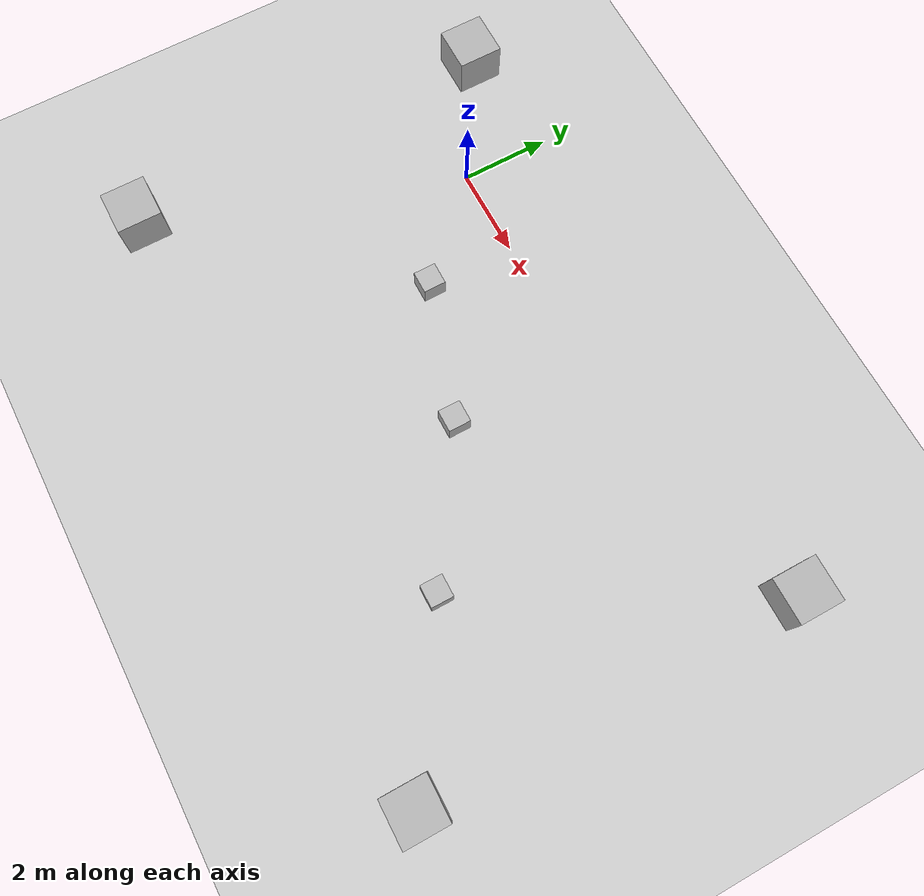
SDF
<sdf version='1.10'>
  <world name='empty'>
    <physics name='1ms' type='ignored'>
      <max_step_size>0.001</max_step_size>
      <real_time_factor>1</real_time_factor>
      <real_time_update_rate>1000</real_time_update_rate>
    </physics>
    <plugin name='gz::sim::systems::Physics' filename='gz-sim-physics-system'/>
    <plugin name='gz::sim::systems::UserCommands' filename='gz-sim-user-commands-system'/>
    <plugin name='gz::sim::systems::SceneBroadcaster' filename='gz-sim-scene-broadcaster-system'/>
    <plugin name='gz::sim::systems::Sensors' filename='gz-sim-sensors-system'>
      <render_engine>ogre2</render_engine>
    </plugin>
    <plugin name='gz::sim::systems::Contact' filename='gz-sim-contact-system'/>
    <gravity>0 0 -9.8000000000000007</gravity>
    <magnetic_field>5.5644999999999998e-06 2.2875799999999999e-05 -4.2388400000000002e-05</magnetic_field>
    <atmosphere type='adiabatic'/>
    <scene>
      <ambient>0.400000006 0.400000006 0.400000006 1</ambient>
      <background>0.699999988 0.699999988 0.699999988 1</background>
      <shadows>true</shadows>
    </scene>
    <model name='ground_plane'>
      <static>true</static>
      <link name='link'>
        <collision name='collision'>
          <geometry>
            <plane>
              <normal>0 0 1</normal>
              <size>100 100</size>
            </plane>
          </geometry>
          <surface>
            <friction>
              <ode>
                <mu>100</mu>
                <mu2>100</mu2>
              </ode>
            </friction>
            <bounce/>
            <contact/>
          </surface>
        </collision>
        <visual name='visual'>
          <geometry>
            <plane>
              <normal>0 0 1</normal>
              <size>100 100</size>
            </plane>
          </geometry>
          <material>
            <ambient>0.800000012 0.800000012 0.800000012 1</ambient>
            <diffuse>0.800000012 0.800000012 0.800000012 1</diffuse>
            <specular>0.800000012 0.800000012 0.800000012 1</specular>
          </material>
        </visual>
        <pose>0 0 0 0 0 0</pose>
        <inertial>
          <pose>0 0 0 0 0 0</pose>
          <mass>1</mass>
          <inertia>
            <ixx>1</ixx>
            <ixy>0</ixy>
            <ixz>0</ixz>
            <iyy>1</iyy>
            <iyz>0</iyz>
            <izz>1</izz>
          </inertia>
        </inertial>
        <enable_wind>false</enable_wind>
      </link>
      <pose>0 0 0 0 0 0</pose>
      <self_collide>false</self_collide>
    </model>
    <model name='box_1_4'>
      <pose>-2.3311622142791748 -6.9827756881713867 0.56375974416732788 1.4772699527518344e-06 -7.2460899505897866e-06 -7.810909560198614e-06</pose>
      <link name='box_link'>
        <inertial>
          <inertia>
            <ixx>0.16666</ixx>
            <ixy>0</ixy>
            <ixz>0</ixz>
            <iyy>0.16666</iyy>
            <iyz>0</iyz>
            <izz>0.16666</izz>
          </inertia>
          <mass>1</mass>
          <pose>0 0 0 0 0 0</pose>
        </inertial>
        <collision name='box_collision'>
          <geometry>
            <box>
              <size>1 1 1</size>
            </box>
          </geometry>
          <surface>
            <friction>
              <ode/>
            </friction>
            <bounce/>
            <contact/>
          </surface>
        </collision>
        <visual name='box_visual'>
          <geometry>
            <box>
              <size>1 1 1</size>
            </box>
          </geometry>
          <material>
            <ambient>0.300000012 0.300000012 0.300000012 1</ambient>
            <diffuse>0.699999988 0.699999988 0.699999988 1</diffuse>
            <specular>1 1 1 1</specular>
          </material>
        </visual>
        <pose>0 0 0 0 0 0</pose>
        <enable_wind>false</enable_wind>
      </link>
      <static>true</static>
      <self_collide>false</self_collide>
    </model>
    <model name='box_1_9_6'>
      <pose>11.394654284721813 1.2646962807962532 0.50000697374343872 -1.3750202313151845e-06 -3.291400639930923e-07 -0.00074492416950657251</pose>
      <link name='box_link'>
        <inertial>
          <inertia>
            <ixx>0.16666</ixx>
            <ixy>0</ixy>
            <ixz>0</ixz>
            <iyy>0.16666</iyy>
            <iyz>0</iyz>
            <izz>0.16666</izz>
          </inertia>
          <mass>1</mass>
          <pose>0 0 0 0 0 0</pose>
        </inertial>
        <collision name='box_collision'>
          <geometry>
            <box>
              <size>1 1 1</size>
            </box>
          </geometry>
          <surface>
            <friction>
              <ode/>
            </friction>
            <bounce/>
            <contact/>
          </surface>
        </collision>
        <visual name='box_visual'>
          <geometry>
            <box>
              <size>1 1 1</size>
            </box>
          </geometry>
          <material>
            <ambient>0.300000012 0.300000012 0.300000012 1</ambient>
            <diffuse>0.699999988 0.699999988 0.699999988 1</diffuse>
            <specular>1 1 1 1</specular>
          </material>
        </visual>
        <pose>0 0 0 0 0 0</pose>
        <enable_wind>false</enable_wind>
      </link>
      <static>true</static>
      <self_collide>false</self_collide>
    </model>
    <model name='box_1_9_9'>
      <pose>11.355712890625 -7.2161660194396973 0.50000834465026855 -1.3750199501617419e-06 -3.2913999658236261e-07 -0.00074492401717668347</pose>
      <link name='box_link'>
        <inertial>
          <inertia>
            <ixx>0.16666</ixx>
            <ixy>0</ixy>
            <ixz>0</ixz>
            <iyy>0.16666</iyy>
            <iyz>0</iyz>
            <izz>0.16666</izz>
          </inertia>
          <mass>1</mass>
          <pose>0 0 0 0 0 0</pose>
        </inertial>
        <collision name='box_collision'>
          <geometry>
            <box>
              <size>1 1 1</size>
            </box>
          </geometry>
          <surface>
            <friction>
              <ode/>
            </friction>
            <bounce/>
            <contact/>
          </surface>
        </collision>
        <visual name='box_visual'>
          <geometry>
            <box>
              <size>1 1 1</size>
            </box>
          </geometry>
          <material>
            <ambient>0.300000012 0.300000012 0.300000012 1</ambient>
            <diffuse>0.699999988 0.699999988 0.699999988 1</diffuse>
            <specular>1 1 1 1</specular>
          </material>
        </visual>
        <pose>0 0 0 0 0 0</pose>
        <enable_wind>false</enable_wind>
      </link>
      <static>true</static>
      <self_collide>false</self_collide>
    </model>
    <model name='box_1_9_10'>
      <pose>-2.5776304290746044 1.4769192680594325 0.5000079870223999 -1.3750202313151845e-06 -3.291400639930923e-07 -0.00074492416950657251</pose>
      <link name='box_link'>
        <inertial>
          <inertia>
            <ixx>0.16666</ixx>
            <ixy>0</ixy>
            <ixz>0</ixz>
            <iyy>0.16666</iyy>
            <iyz>0</iyz>
            <izz>0.16666</izz>
          </inertia>
          <mass>1</mass>
          <pose>0 0 0 0 0 0</pose>
        </inertial>
        <collision name='box_collision'>
          <geometry>
            <box>
              <size>1 1 1</size>
            </box>
          </geometry>
          <surface>
            <friction>
              <ode/>
            </friction>
            <bounce/>
            <contact/>
          </surface>
        </collision>
        <visual name='box_visual'>
          <geometry>
            <box>
              <size>1 1 1</size>
            </box>
          </geometry>
          <material>
            <ambient>0.300000012 0.300000012 0.300000012 1</ambient>
            <diffuse>0.699999988 0.699999988 0.699999988 1</diffuse>
            <specular>1 1 1 1</specular>
          </material>
        </visual>
        <pose>0 0 0 0 0 0</pose>
        <enable_wind>false</enable_wind>
      </link>
      <static>true</static>
      <self_collide>false</self_collide>
    </model>
    <model name='moving_box_1'>
      <static>false</static>
      <pose>2 -2 0.24999999997243758 4.4051979816434719e-22 2.2861681299547203e-21 -2.0617774592988237e-23</pose>
      <link name='link'>
        <collision name='collision'>
          <geometry>
            <box>
              <size>0.5 0.5 0.5</size>
            </box>
          </geometry>
          <surface>
            <friction>
              <ode/>
            </friction>
            <bounce/>
            <contact/>
          </surface>
        </collision>
        <visual name='visual'>
          <geometry>
            <box>
              <size>0.5 0.5 0.5</size>
            </box>
          </geometry>
        </visual>
        <pose>0 0 0 0 0 0</pose>
        <inertial>
          <pose>0 0 0 0 0 0</pose>
          <mass>1</mass>
          <inertia>
            <ixx>1</ixx>
            <ixy>0</ixy>
            <ixz>0</ixz>
            <iyy>1</iyy>
            <iyz>0</iyz>
            <izz>1</izz>
          </inertia>
        </inertial>
        <enable_wind>false</enable_wind>
      </link>
      <self_collide>false</self_collide>
    </model>
    <model name='moving_box_2'>
      <static>false</static>
      <pose>5 -3 0.24999999997243758 4.4051979816434719e-22 2.2861681299547203e-21 -2.0617774592988237e-23</pose>
      <link name='link'>
        <collision name='collision'>
          <geometry>
            <box>
              <size>0.5 0.5 0.5</size>
            </box>
          </geometry>
          <surface>
            <friction>
              <ode/>
            </friction>
            <bounce/>
            <contact/>
          </surface>
        </collision>
        <visual name='visual'>
          <geometry>
            <box>
              <size>0.5 0.5 0.5</size>
            </box>
          </geometry>
        </visual>
        <pose>0 0 0 0 0 0</pose>
        <inertial>
          <pose>0 0 0 0 0 0</pose>
          <mass>1</mass>
          <inertia>
            <ixx>1</ixx>
            <ixy>0</ixy>
            <ixz>0</ixz>
            <iyy>1</iyy>
            <iyz>0</iyz>
            <izz>1</izz>
          </inertia>
        </inertial>
        <enable_wind>false</enable_wind>
      </link>
      <self_collide>false</self_collide>
    </model>
    <model name='moving_box_3'>
      <static>false</static>
      <pose>8 -5 0.24999999997243758 4.4051979816434719e-22 2.2861681299547203e-21 -2.0617774592988237e-23</pose>
      <link name='link'>
        <collision name='collision'>
          <geometry>
            <box>
              <size>0.5 0.5 0.5</size>
            </box>
          </geometry>
          <surface>
            <friction>
              <ode/>
            </friction>
            <bounce/>
            <contact/>
          </surface>
        </collision>
        <visual name='visual'>
          <geometry>
            <box>
              <size>0.5 0.5 0.5</size>
            </box>
          </geometry>
        </visual>
        <pose>0 0 0 0 0 0</pose>
        <inertial>
          <pose>0 0 0 0 0 0</pose>
          <mass>1</mass>
          <inertia>
            <ixx>1</ixx>
            <ixy>0</ixy>
            <ixz>0</ixz>
            <iyy>1</iyy>
            <iyz>0</iyz>
            <izz>1</izz>
          </inertia>
        </inertial>
        <enable_wind>false</enable_wind>
      </link>
      <self_collide>false</self_collide>
    </model>
    <light name='sun' type='directional'>
      <pose>0 0 10 0 0 0</pose>
      <cast_shadows>true</cast_shadows>
      <intensity>1</intensity>
      <direction>-0.5 0.10000000000000001 -0.90000000000000002</direction>
      <diffuse>0.800000012 0.800000012 0.800000012 1</diffuse>
      <specular>0.200000003 0.200000003 0.200000003 1</specular>
      <attenuation>
        <range>1000</range>
        <linear>0.01</linear>
        <constant>0.90000000000000002</constant>
        <quadratic>0.001</quadratic>
      </attenuation>
      <spot>
        <inner_angle>0</inner_angle>
        <outer_angle>0</outer_angle>
        <falloff>0</falloff>
      </spot>
    </light>
  </world>
</sdf>
